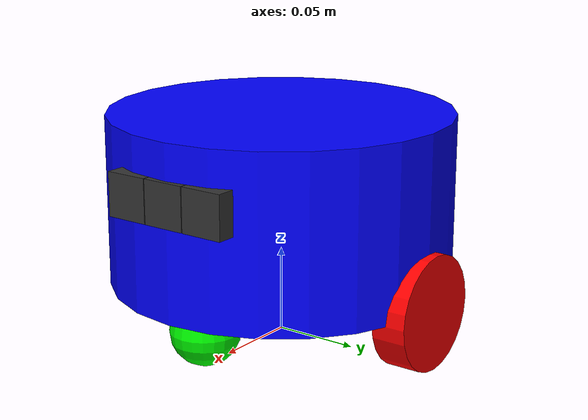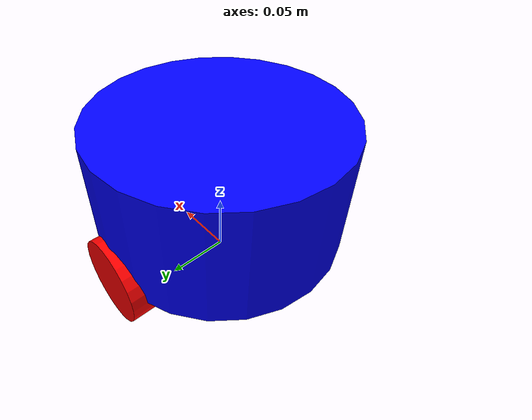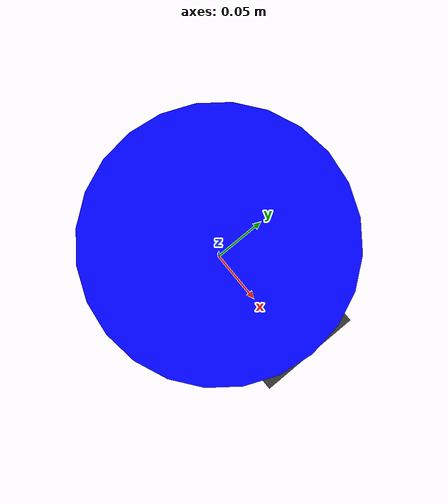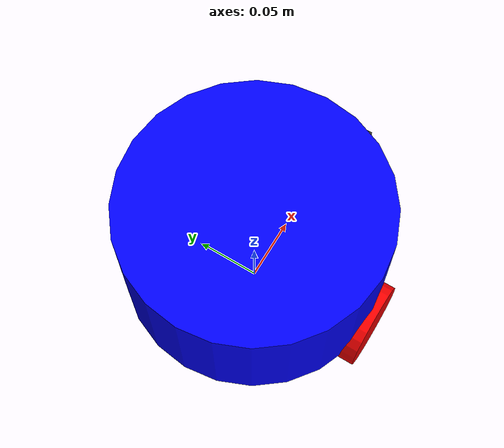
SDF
<sdf version="1.9">
 <world name="tugbot_depot_world">
  <physics name="1ms" type="ignored">
   <max_step_size>0.001</max_step_size>
   <real_time_factor>1</real_time_factor>
  </physics>
  <plugin filename="gz-sim-physics-system" name="gz::sim::systems::Physics"/>
  <plugin filename="gz-sim-user-commands-system" name="gz::sim::systems::UserCommands"/>
  <plugin filename="gz-sim-scene-broadcaster-system" name="gz::sim::systems::SceneBroadcaster"/>
  <plugin filename="gz-sim-imu-system" name="gz::sim::systems::Imu"/>
  <plugin filename="gz-sim-sensors-system" name="gz::sim::systems::Sensors">
   <render_engine>ogre2</render_engine>
  </plugin>
  <scene>
   <ambient>1 1 1 1</ambient>
   <background>0.3 0.7 0.9 1</background>
   <shadows>0</shadows>
   <grid>1</grid>
  </scene>
  <model name="ground_plane">
   <static>1</static>
   <link name="link">
    <collision name="collision">
     <geometry><plane><normal>0 0 1</normal><size>1 1</size></plane></geometry>
    </collision>
   </link>
   <pose>0 0 0.002 0 0 0</pose>
  </model>
  <model name="depot_collision">
   <static>1</static>
   <pose>7.19009 1.09982 0 0 0 0</pose>
   <link name="collision_link">
    <collision name="wall1">
     <pose>0 -7.6129 4.5 0 0 0</pose>
     <geometry><box><size>30.167 0.08 9</size></box></geometry>
    </collision>
    <collision name="wall2">
     <pose>0 7.2875 4.5 0 0 0</pose>
     <geometry><box><size>30.167 0.08 9</size></box></geometry>
    </collision>
    <collision name="wall3">
     <pose>-15 0 4.5 0 0 0</pose>
     <geometry><box><size>0.08 15.360 9</size></box></geometry>
    </collision>
    <collision name="wall4">
     <pose>15 0 4.5 0 0 0</pose>
     <geometry><box><size>0.08 15.360 9</size></box></geometry>
    </collision>
    <collision name="boxes1">
     <pose>0.22268 -4.7268 0.68506 0 0 0</pose>
     <geometry><box><size>1.288 1.422 1.288</size></box></geometry>
    </collision>
    <collision name="boxes2">
     <pose>3.1727 -4.7268 0.68506 0 0 0</pose>
     <geometry><box><size>1.288 1.422 1.288</size></box></geometry>
    </collision>
    <collision name="boxes3">
     <pose>5.95268 -4.7268 0.68506 0 0 0</pose>
     <geometry><box><size>1.288 1.422 1.288</size></box></geometry>
    </collision>
    <collision name="boxes4">
     <pose>8.55887 -4.7268 0.68506 0 0 0</pose>
     <geometry><box><size>1.288 1.422 1.288</size></box></geometry>
    </collision>
    <collision name="boxes5">
     <pose>11.326 -4.7268 0.68506 0 0 0</pose>
     <geometry><box><size>1.288 1.422 1.288</size></box></geometry>
    </collision>
    <collision name="boxes6">
     <pose>0.22268 -2.37448 0.68506 0 0 0</pose>
     <geometry><box><size>1.288 1.422 1.288</size></box></geometry>
    </collision>
    <collision name="boxes7">
     <pose>3.1727 -2.37448 0.68506 0 0 0</pose>
     <geometry><box><size>1.288 1.422 1.288</size></box></geometry>
    </collision>
    <collision name="boxes8">
     <pose>5.95268 -2.37448 0.68506 0 0 0</pose>
     <geometry><box><size>1.288 1.422 1.288</size></box></geometry>
    </collision>
    <collision name="boxes9">
     <pose>8.55887 -2.37448 0.68506 0 0 0</pose>
     <geometry><box><size>1.288 1.422 1.288</size></box></geometry>
    </collision>
    <collision name="boxes10">
     <pose>11.326 -2.37448 0.68506 0 0 0</pose>
     <geometry><box><size>1.288 1.422 1.288</size></box></geometry>
    </collision>
    <collision name="boxes11">
     <pose>-1.2268 4.1557 0.68506 0 0 -1.02799893</pose>
     <geometry><box><size>1.288 1.422 1.288</size></box></geometry>
    </collision>
    <collision name="pilar1">
     <pose>-7.5402 3.6151 1 0 0 0</pose>
     <geometry><box><size>0.465 0.465 2</size></box></geometry>
    </collision>
    <collision name="pilar2">
     <pose>7.4575 3.6151 1 0 0 0</pose>
     <geometry><box><size>0.465 0.465 2</size></box></geometry>
    </collision>
    <collision name="pilar3">
     <pose>-7.5402 -3.8857 1 0 0 0</pose>
     <geometry><box><size>0.465 0.465 2</size></box></geometry>
    </collision>
    <collision name="pilar4">
     <pose>7.4575 -3.8857 1 0 0 0</pose>
     <geometry><box><size>0.465 0.465 2</size></box></geometry>
    </collision>
    <collision name="pallet_mover1">
     <pose>-0.6144 -2.389 0.41838 0 0 0</pose>
     <geometry><box><size>0.363 0.440 0.719</size></box></geometry>
    </collision>
    <collision name="pallet_mover2">
     <pose>-1.6004 4.8225 0.41838 0 0 0</pose>
     <geometry><box><size>0.363 0.244 0.719</size></box></geometry>
    </collision>
    <collision name="stairs">
     <pose>13.018 3.1652 0.25 0 0 0</pose>
     <geometry><box><size>1.299 0.6 0.5</size></box></geometry>
    </collision>
    <collision name="shelfs1">
     <pose>1.4662 -0.017559 0.5 0 0 0</pose>
     <geometry><cylinder><radius>0.03</radius><length>1</length></cylinder></geometry>
    </collision>
    <collision name="shelfs2">
     <pose>2.6483 -0.017559 0.5 0 0 0</pose>
     <geometry><cylinder><radius>0.03</radius><length>1</length></cylinder></geometry>
    </collision>
    <collision name="shelfs3">
     <pose>5.3247 -0.017559 0.5 0 0 0</pose>
     <geometry><cylinder><radius>0.03</radius><length>1</length></cylinder></geometry>
    </collision>
    <collision name="shelfs4">
     <pose>6.5063 -0.017559 0.5 0 0 0</pose>
     <geometry><cylinder><radius>0.03</radius><length>1</length></cylinder></geometry>
    </collision>
    <collision name="shelfs5">
     <pose>9.0758 -0.017559 0.5 0 0 0</pose>
     <geometry><cylinder><radius>0.03</radius><length>1</length></cylinder></geometry>
    </collision>
    <collision name="shelfs6">
     <pose>10.258 -0.017559 0.5 0 0 0</pose>
     <geometry><cylinder><radius>0.03</radius><length>1</length></cylinder></geometry>
    </collision>
    <collision name="shelfs7">
     <pose>1.4662 2.5664 0.5 0 0 0</pose>
     <geometry><cylinder><radius>0.03</radius><length>1</length></cylinder></geometry>
    </collision>
    <collision name="shelfs8">
     <pose>2.6483 2.5664 0.5 0 0 0</pose>
     <geometry><cylinder><radius>0.03</radius><length>1</length></cylinder></geometry>
    </collision>
    <collision name="shelfs9">
     <pose>5.3247 2.5664 0.5 0 0 0</pose>
     <geometry><cylinder><radius>0.03</radius><length>1</length></cylinder></geometry>
    </collision>
    <collision name="shelfs10">
     <pose>6.5063 2.5664 0.5 0 0 0</pose>
     <geometry><cylinder><radius>0.03</radius><length>1</length></cylinder></geometry>
    </collision>
    <collision name="shelfs11">
     <pose>9.0758 2.5664 0.5 0 0 0</pose>
     <geometry><cylinder><radius>0.03</radius><length>1</length></cylinder></geometry>
    </collision>
    <collision name="shelfs12">
     <pose>10.258 2.5664 0.5 0 0 0</pose>
     <geometry><cylinder><radius>0.03</radius><length>1</length></cylinder></geometry>
    </collision>
    <collision name="shelfs13">
     <pose>1.4662 5.1497 0.5 0 0 0</pose>
     <geometry><cylinder><radius>0.03</radius><length>1</length></cylinder></geometry>
    </collision>
    <collision name="shelfs14">
     <pose>2.6483 5.1497 0.5 0 0 0</pose>
     <geometry><cylinder><radius>0.03</radius><length>1</length></cylinder></geometry>
    </collision>
    <collision name="shelfs15">
     <pose>5.3247 5.1497 0.5 0 0 0</pose>
     <geometry><cylinder><radius>0.03</radius><length>1</length></cylinder></geometry>
    </collision>
    <collision name="shelfs16">
     <pose>6.5063 5.1497 0.5 0 0 0</pose>
     <geometry><cylinder><radius>0.03</radius><length>1</length></cylinder></geometry>
    </collision>
    <collision name="shelfs17">
     <pose>9.0758 5.1497 0.5 0 0 0</pose>
     <geometry><cylinder><radius>0.03</radius><length>1</length></cylinder></geometry>
    </collision>
    <collision name="shelfs18">
     <pose>10.258 5.1497 0.5 0 0 0</pose>
     <geometry><cylinder><radius>0.03</radius><length>1</length></cylinder></geometry>
    </collision>
   </link>
  </model>
  <model name="lekiwi" canonical_link="chassis">
   <plugin filename="gz-sim-diff-drive-system" name="gz::sim::systems::DiffDrive">
    <left_joint>left_wheel_joint</left_joint>
    <right_joint>right_wheel_joint</right_joint>
    <wheel_separation>0.19</wheel_separation>
    <wheel_radius>0.033</wheel_radius>
    <odom_publish_frequency>20</odom_publish_frequency>
    <topic>cmd_vel</topic>
   </plugin>
   <pose relative_to="world">0 0 0 0 0 0</pose>
   <link name="chassis">
    <pose relative_to="__model__">0 0 0.083 0 0 0</pose>
    <sensor name="imu_sensor" type="imu">
     <always_on>1</always_on>
     <update_rate>200</update_rate>
     <visualize>true</visualize>
     <topic>/camera/camera/imu</topic>
     <pose>0.05 0 0.02 1.5708 3.14159 1.5708</pose>
    </sensor>
    <inertial>
     <mass>1.0</mass>
     <inertia><ixx>0.0033</ixx><ixy>0</ixy><ixz>0</ixz><iyy>0.0033</iyy><iyz>0</iyz><izz>0.005</izz></inertia>
    </inertial>
    <visual name="visual">
     <geometry><cylinder><radius>0.1</radius><length>0.1</length></cylinder></geometry>
     <material>
      <ambient>0.0 0.0 1.0 1</ambient>
      <diffuse>0.0 0.0 1.0 1</diffuse>
      <specular>0.0 0.0 1.0 1</specular>
     </material>
    </visual>
    <collision name="collision">
     <geometry><cylinder><radius>0.1</radius><length>0.1</length></cylinder></geometry>
    </collision>
   </link>
   <link name="infra1_link">
    <pose relative_to="chassis">0.09 0.0255 0.017 0 0 0</pose>
    <inertial>
     <mass>0.03</mass>
     <inertia><ixx>1e-5</ixx><ixy>0</ixy><ixz>0</ixz><iyy>1e-5</iyy><iyz>0</iyz><izz>1e-5</izz></inertia>
    </inertial>
    <visual name="visual">
     <geometry><box><size>0.025 0.025 0.025</size></box></geometry>
     <material>
      <ambient>0.2 0.2 0.2 1</ambient>
      <diffuse>0.2 0.2 0.2 1</diffuse>
      <specular>0.2 0.2 0.2 1</specular>
     </material>
    </visual>
    <collision name="collision"><geometry><box><size>0.025 0.025 0.025</size></box></geometry></collision>
    <sensor name="infra1" type="camera">
     <camera>
      <horizontal_fov>1.5708</horizontal_fov>
      <image><width>544</width><height>480</height><format>L8</format></image>
      <clip><near>0.1</near><far>100</far></clip>
     </camera>
     <always_on>1</always_on>
     <update_rate>15</update_rate>
     <visualize>true</visualize>
     <topic>/camera/camera/infra1/image_rect_raw</topic>
    </sensor>
   </link>
   <link name="infra2_link">
    <pose relative_to="chassis">0.09 -0.0255 0.017 0 0 0</pose>
    <inertial>
     <mass>0.03</mass>
     <inertia><ixx>1e-5</ixx><ixy>0</ixy><ixz>0</ixz><iyy>1e-5</iyy><iyz>0</iyz><izz>1e-5</izz></inertia>
    </inertial>
    <visual name="visual">
     <geometry><box><size>0.025 0.025 0.025</size></box></geometry>
     <material>
      <ambient>0.2 0.2 0.2 1</ambient>
      <diffuse>0.2 0.2 0.2 1</diffuse>
      <specular>0.2 0.2 0.2 1</specular>
     </material>
    </visual>
    <collision name="collision"><geometry><box><size>0.025 0.025 0.025</size></box></geometry></collision>
    <sensor name="infra2" type="camera">
     <camera>
      <horizontal_fov>1.5708</horizontal_fov>
      <image><width>544</width><height>480</height><format>L8</format></image>
      <clip><near>0.1</near><far>100</far></clip>
     </camera>
     <always_on>1</always_on>
     <update_rate>15</update_rate>
     <visualize>true</visualize>
     <topic>/camera/camera/infra2/image_rect_raw</topic>
    </sensor>
   </link>
   <link name="color_link">
    <pose relative_to="chassis">0.09 0 0.017 0 0 0</pose>
    <inertial>
     <mass>0.03</mass>
     <inertia><ixx>1e-5</ixx><ixy>0</ixy><ixz>0</ixz><iyy>1e-5</iyy><iyz>0</iyz><izz>1e-5</izz></inertia>
    </inertial>
    <visual name="visual">
     <geometry><box><size>0.025 0.025 0.025</size></box></geometry>
     <material>
      <ambient>0.2 0.2 0.2 1</ambient>
      <diffuse>0.2 0.2 0.2 1</diffuse>
      <specular>0.2 0.2 0.2 1</specular>
     </material>
    </visual>
    <collision name="collision"><geometry><box><size>0.025 0.025 0.025</size></box></geometry></collision>
    <sensor name="color" type="camera">
     <camera>
      <horizontal_fov>1.5708</horizontal_fov>
      <image><width>544</width><height>480</height><format>RGB_INT8</format></image>
      <clip><near>0.1</near><far>100</far></clip>
     </camera>
     <always_on>1</always_on>
     <update_rate>15</update_rate>
     <visualize>true</visualize>
     <topic>/camera/camera/color/image_raw</topic>
    </sensor>
   </link>
   <link name="left_wheel">
    <pose relative_to="chassis">0 0.095 -0.05 -1.5707 0 0</pose>
    <inertial>
     <mass>0.05</mass>
     <inertia><ixx>1.5e-5</ixx><ixy>0</ixy><ixz>0</ixz><iyy>1.5e-5</iyy><iyz>0</iyz><izz>2.7e-5</izz></inertia>
    </inertial>
    <visual name="visual">
     <geometry><cylinder><radius>0.033</radius><length>0.02</length></cylinder></geometry>
     <material>
      <ambient>1.0 0.0 0.0 1</ambient>
      <diffuse>1.0 0.0 0.0 1</diffuse>
      <specular>1.0 0.0 0.0 1</specular>
     </material>
    </visual>
    <collision name="collision">
     <geometry><cylinder><radius>0.033</radius><length>0.02</length></cylinder></geometry>
    </collision>
   </link>
   <link name="right_wheel">
    <pose relative_to="chassis">0 -0.095 -0.05 -1.5707 0 0</pose>
    <inertial>
     <mass>0.05</mass>
     <inertia><ixx>1.5e-5</ixx><ixy>0</ixy><ixz>0</ixz><iyy>1.5e-5</iyy><iyz>0</iyz><izz>2.7e-5</izz></inertia>
    </inertial>
    <visual name="visual">
     <geometry><cylinder><radius>0.033</radius><length>0.02</length></cylinder></geometry>
     <material>
      <ambient>1.0 0.0 0.0 1</ambient>
      <diffuse>1.0 0.0 0.0 1</diffuse>
      <specular>1.0 0.0 0.0 1</specular>
     </material>
    </visual>
    <collision name="collision">
     <geometry><cylinder><radius>0.033</radius><length>0.02</length></cylinder></geometry>
    </collision>
   </link>
   <joint name="left_wheel_joint" type="revolute">
    <parent>chassis</parent>
    <child>left_wheel</child>
    <axis><xyz>0 0 1</xyz></axis>
   </joint>
   <joint name="right_wheel_joint" type="revolute">
    <parent>chassis</parent>
    <child>right_wheel</child>
    <axis><xyz>0 0 1</xyz></axis>
   </joint>
   <frame name="caster_frame" attached_to="chassis"><pose>-0.07 0 -0.062 0 0 0</pose></frame>
   <link name="caster">
    <pose relative_to="caster_frame"/>
    <inertial>
     <mass>0.05</mass>
     <inertia><ixx>8e-6</ixx><ixy>0</ixy><ixz>0</ixz><iyy>8e-6</iyy><iyz>0</iyz><izz>8e-6</izz></inertia>
    </inertial>
    <visual name="visual">
     <geometry><sphere><radius>0.02</radius></sphere></geometry>
     <material>
      <ambient>0.0 1 0.0 1</ambient>
      <diffuse>0.0 1 0.0 1</diffuse>
      <specular>0.0 1 0.0 1</specular>
     </material>
    </visual>
    <collision name="collision"><geometry><sphere><radius>0.02</radius></sphere></geometry></collision>
   </link>
   <joint name="caster_wheel" type="ball"><parent>chassis</parent><child>caster</child></joint>
   <frame name="front_caster_frame" attached_to="chassis"><pose>0.07 0 -0.062 0 0 0</pose></frame>
   <link name="front_caster">
    <pose relative_to="front_caster_frame"/>
    <inertial>
     <mass>0.05</mass>
     <inertia><ixx>8e-6</ixx><ixy>0</ixy><ixz>0</ixz><iyy>8e-6</iyy><iyz>0</iyz><izz>8e-6</izz></inertia>
    </inertial>
    <visual name="visual">
     <geometry><sphere><radius>0.02</radius></sphere></geometry>
     <material>
      <ambient>0.0 1 0.0 1</ambient>
      <diffuse>0.0 1 0.0 1</diffuse>
      <specular>0.0 1 0.0 1</specular>
     </material>
    </visual>
    <collision name="collision"><geometry><sphere><radius>0.02</radius></sphere></geometry></collision>
   </link>
   <joint name="front_caster_wheel" type="ball"><parent>chassis</parent><child>front_caster</child></joint>
   <joint name="infra1_joint" type="fixed"><parent>chassis</parent><child>infra1_link</child></joint>
   <joint name="infra2_joint" type="fixed"><parent>chassis</parent><child>infra2_link</child></joint>
   <joint name="color_joint" type="fixed"><parent>chassis</parent><child>color_link</child></joint>
  </model>
 </world>
</sdf>
